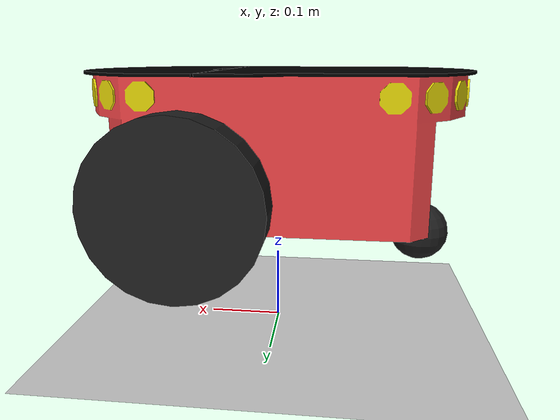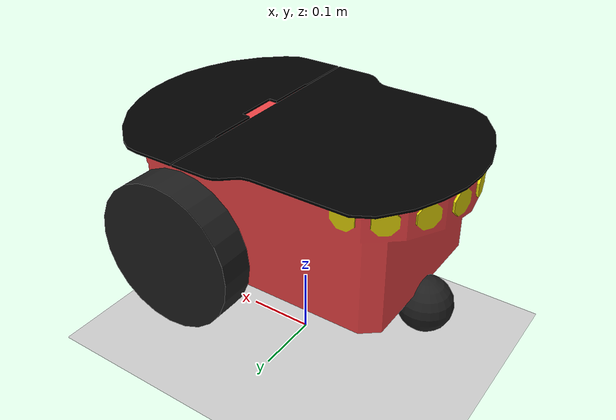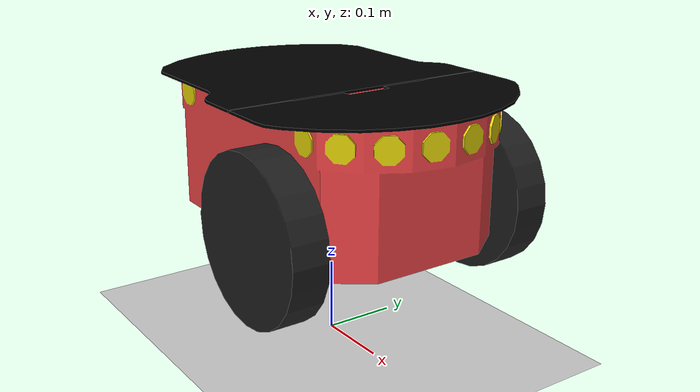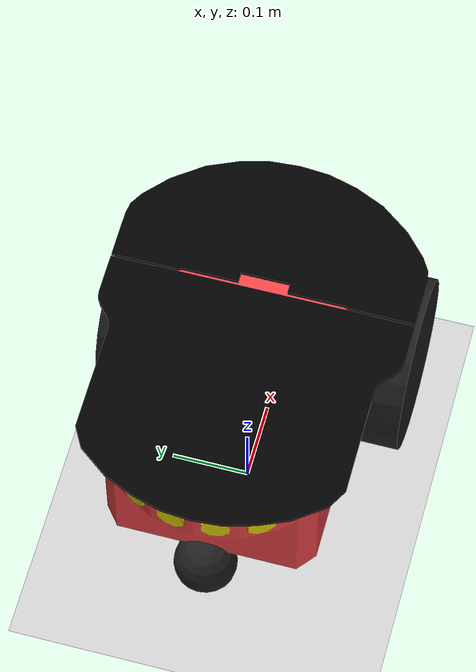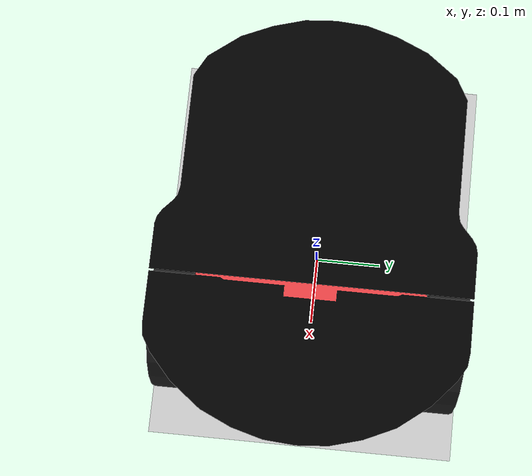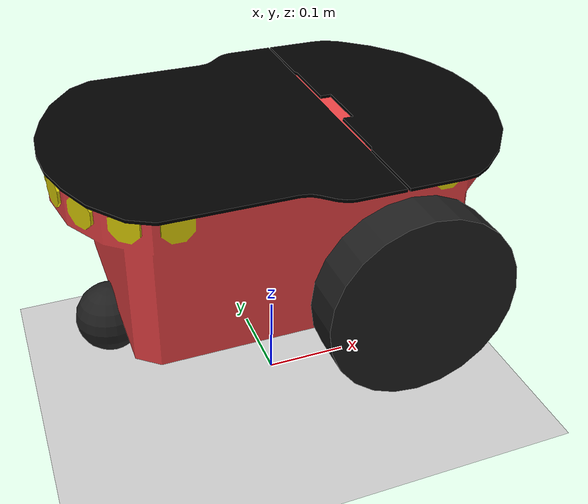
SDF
<?xml version="1.0" ?>
<sdf version="1.4">
    <world name="pioneer">
        <physics type="ode">
            <gravity>0 0 -98.1</gravity>
            <ode>
                <solver>
                    <type>quick</type>
                    <iters>40</iters>
                    <sor>1.0</sor>
                </solver>
                <constraints>
                    <cfm>0.0</cfm>
                    <erp>0.2</erp>
                    <contact_max_correcting_vel>10.0</contact_max_correcting_vel>
                    <contact_surface_layer>0.0</contact_surface_layer>
                </constraints>
            </ode>
            <max_step_size>0.001</max_step_size>
        </physics>
        <!-- A global light source -->
        <include>
            <uri>model://sun</uri>
        </include>
        <!-- A ground plane -->
        <include>
            <uri>model://ground_plane</uri>
        </include>
        <!-- Robots -->
        <include>
            <uri>model://pioneer2dx</uri>
            <pose>0 0 0.1 0 0 0</pose>
        </include>
        <plugin name="clock" filename="libClockServerPlugin.so" />
    </world>
</sdf>

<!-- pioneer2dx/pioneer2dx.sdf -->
<sdf version="1.4">
    <model name="pioneer2dx">
        <link name="chassis">
            <pose>0 0 0.16 0 0 0</pose>
            <inertial>
                <mass>5.0</mass>
            </inertial>
            <collision name="collision">
                <geometry>
                    <box>
                        <size>0.445 0.277 0.17</size>
                    </box>
                </geometry>
            </collision>
            <collision name="castor_collision">
                <pose>-0.200 0 -0.12 0 0 0</pose>
                <geometry>
                    <sphere>
                        <radius>0.04</radius>
                    </sphere>
                </geometry>
                <surface>
                    <friction>
                        <ode>
                            <mu>0</mu>
                            <mu2>0</mu2>
                            <slip1>1.0</slip1>
                            <slip2>1.0</slip2>
                        </ode>
                    </friction>
                </surface>
            </collision>
            <visual name="visual">
                <pose>0 0 0.04 0 0 0</pose>
                <geometry>
                    <mesh>
                        <uri>model://pioneer2dx/meshes/chassis.dae</uri>
                    </mesh>
                </geometry>
            </visual>
            <visual name="castor_visual">
                <pose>-0.200 0 -0.12 0 0 0</pose>
                <geometry>
                    <sphere>
                        <radius>0.04</radius>
                    </sphere>
                </geometry>
                <material>
                    <script>
                        <uri>file://media/materials/scripts/gazebo.material</uri>
                        <name>Gazebo/FlatBlack</name>
                    </script>
                </material>
            </visual>
        </link>
        <link name="right_wheel">
            <pose>0.1 -.17 0.11 0 1.5707 1.5707</pose>
            <inertial>
                <mass>0.1</mass>
            </inertial>
            <collision name="collision">
                <geometry>
                    <cylinder>
                        <radius>0.11</radius>
                        <length>0.05</length>
                    </cylinder>
                </geometry>
                <surface>
                    <friction>
                        <ode>
                            <mu>100000.0</mu>
                            <mu2>100000.0</mu2>
                            <slip1>0.0</slip1>
                            <slip2>0.0</slip2>
                        </ode>
                    </friction>
                </surface>
            </collision>
            <visual name="visual">
                <geometry>
                    <cylinder>
                        <radius>0.11</radius>
                        <length>0.05</length>
                    </cylinder>
                </geometry>
                <material>
                    <script>
                        <uri>file://media/materials/scripts/gazebo.material</uri>
                        <name>Gazebo/FlatBlack</name>
                    </script>
                </material>
            </visual>
        </link>
        <link name="left_wheel">
            <pose>0.1 .17 0.11 0 1.5707 1.5707</pose>
            <inertial>
                <mass>0.1</mass>
            </inertial>
            <collision name="collision">
                <geometry>
                    <cylinder>
                        <radius>0.11</radius>
                        <length>0.05</length>
                    </cylinder>
                </geometry>
                <surface>
                    <friction>
                        <ode>
                            <mu>100000.0</mu>
                            <mu2>100000.0</mu2>
                            <slip1>0.0</slip1>
                            <slip2>0.0</slip2>
                        </ode>
                    </friction>
                </surface>
            </collision>
            <visual name="visual">
                <geometry>
                    <cylinder>
                        <radius>0.11</radius>
                        <length>0.05</length>
                    </cylinder>
                </geometry>
                <material>
                    <script>
                        <uri>file://media/materials/scripts/gazebo.material</uri>
                        <name>Gazebo/FlatBlack</name>
                    </script>
                </material>
            </visual>
        </link>
        <joint type="revolute" name="left_wheel_hinge">
            <pose>0 0 -0.03 0 0 0</pose>
            <axis>
                <xyz>0 1 0</xyz>
            </axis>
            <parent>chassis</parent>
            <child>left_wheel</child>
        </joint>
        <joint type="revolute" name="right_wheel_hinge">
            <pose>0 0 0.03 0 0 0</pose>
            <axis>
                <xyz>0 1 0</xyz>
            </axis>
            <parent>chassis</parent>
            <child>right_wheel</child>
        </joint>
        <plugin name="diff_drive_plugin" filename="libLunaboticsDiffDrivePlugin.so">
            <left_wheel_hinge>left_wheel_hinge</left_wheel_hinge>
            <right_wheel_hinge>right_wheel_hinge</right_wheel_hinge>
            <torque>5</torque>
        </plugin>
        <plugin name="odometry_plugin" filename="libLunaboticsOdometryPlugin.so" />
    </model>
</sdf>
